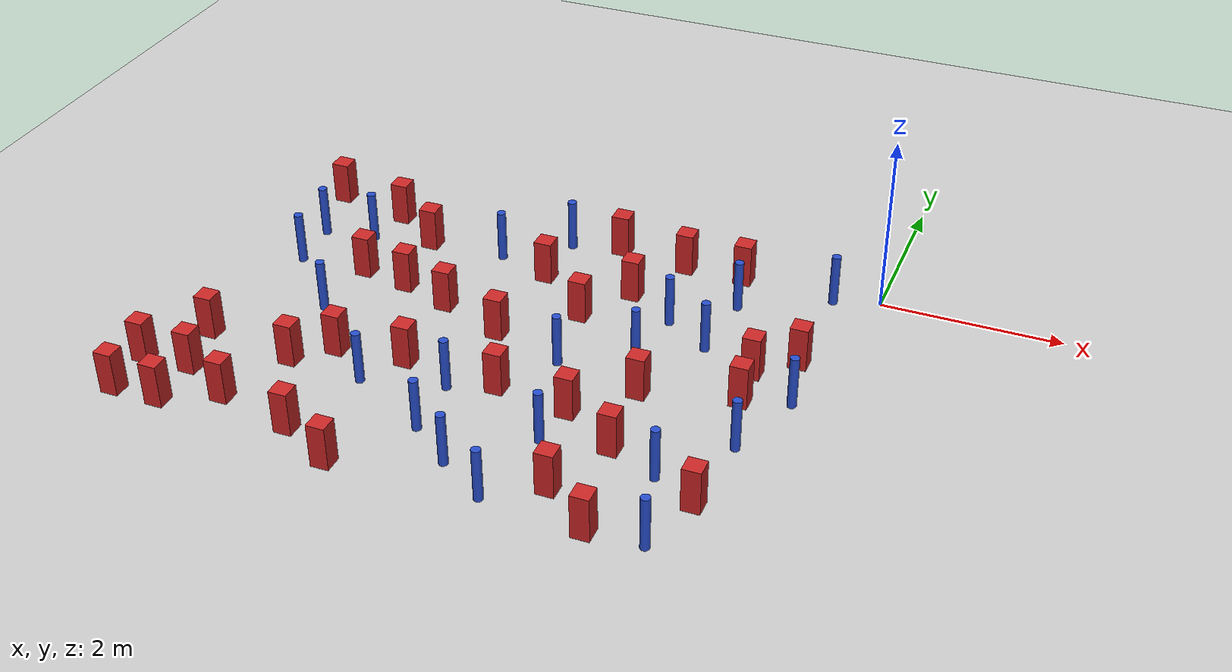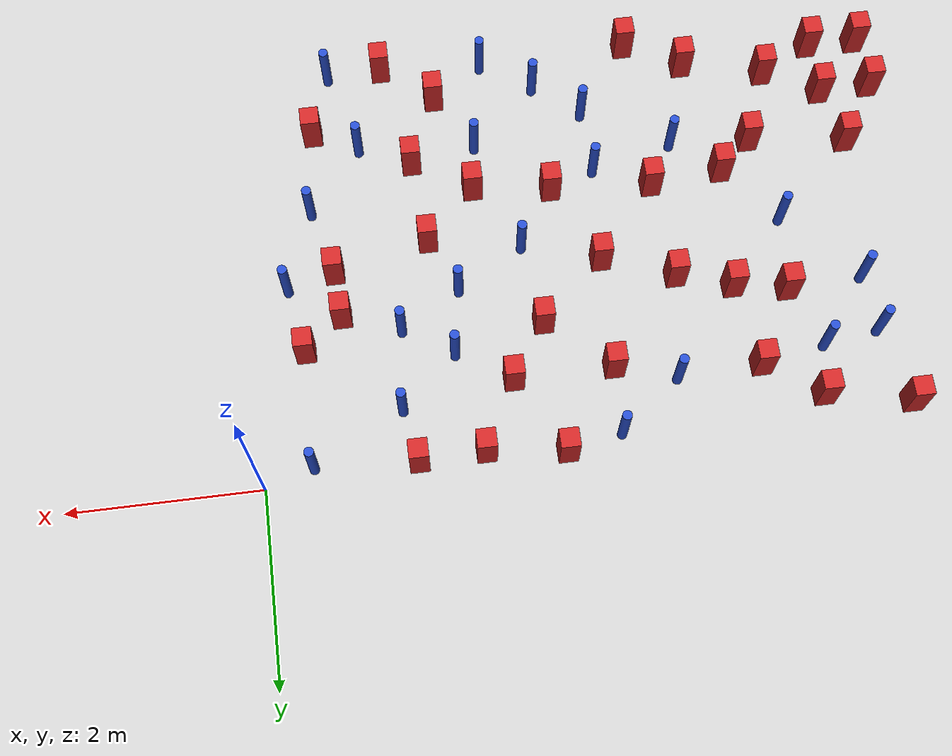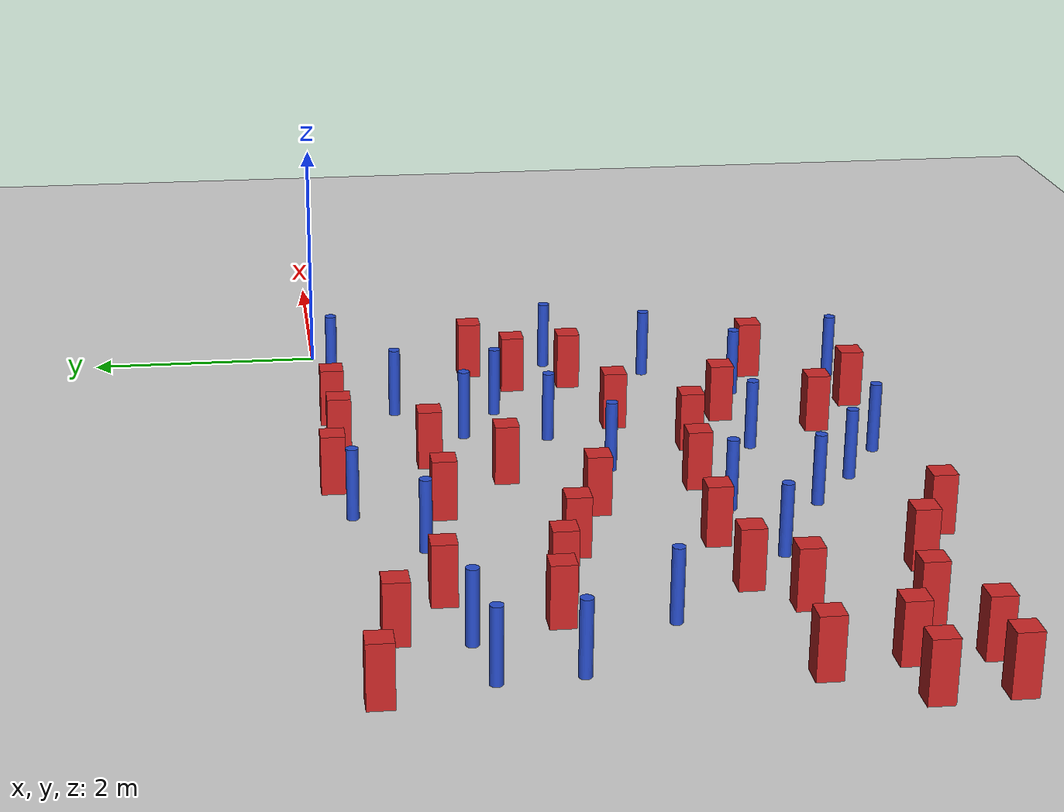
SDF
<sdf version="1.6">
 <world name="default">
  <model name="ground_plane">
   <static>1</static>
   <link name="link">
    <collision name="collision">
     <geometry><plane><normal>0 0 1</normal><size>100 100</size></plane></geometry>
     <surface><friction><ode><mu>100</mu><mu2>50</mu2></ode></friction></surface>
    </collision>
    <visual name="visual">
     <cast_shadows>0</cast_shadows>
     <geometry><plane><normal>0 0 1</normal><size>100 100</size></plane></geometry>
     <material>
      <ambient>1.0 1.0 1.0 1.0</ambient>
      <diffuse>0.8 0.8 0.8 1.0</diffuse>
      <specular>0.01 0.01 0.01 1.000000</specular>
     </material>
    </visual>
   </link>
  </model>
  <model name="square_post_obstacle0">
   <static>true</static>
   <pose>-2.44541157408 -3.07652262404 1.91545236811e-07 -7.35059704564e-06 1.12565212e-07 2.39332434364e-05</pose>
   <link name="link">
    <pose>0 0 0.25 0 -0 0</pose>
    <inertial>
     <mass>100</mass>
     <inertia>
      <ixx>0.166667</ixx>
      <ixy>0</ixy>
      <ixz>0</ixz>
      <iyy>0.166667</iyy>
      <iyz>0</iyz>
      <izz>0.166667</izz>
     </inertia>
    </inertial>
    <collision name="collision"><geometry><box><size>.2 .2 .5</size></box></geometry></collision>
    <visual name="visual">
     <geometry><box><size>.2 .2 .5</size></box></geometry>
     <material>
      <script><name>Gazebo/Red</name><uri>file://media/materials/scripts/gazebo.material</uri></script>
     </material>
    </visual>
   </link>
  </model>
  <model name="square_post_obstacle1">
   <static>true</static>
   <pose>-2.60366853146 -0.84480059614 1.91545236811e-07 -7.35059704564e-06 1.12565212e-07 2.39332434364e-05</pose>
   <link name="link">
    <pose>0 0 0.25 0 -0 0</pose>
    <inertial>
     <mass>100</mass>
     <inertia>
      <ixx>0.166667</ixx>
      <ixy>0</ixy>
      <ixz>0</ixz>
      <iyy>0.166667</iyy>
      <iyz>0</iyz>
      <izz>0.166667</izz>
     </inertia>
    </inertial>
    <collision name="collision"><geometry><box><size>.2 .2 .5</size></box></geometry></collision>
    <visual name="visual">
     <geometry><box><size>.2 .2 .5</size></box></geometry>
     <material>
      <script><name>Gazebo/Red</name><uri>file://media/materials/scripts/gazebo.material</uri></script>
     </material>
    </visual>
   </link>
  </model>
  <model name="square_post_obstacle8">
   <static>true</static>
   <pose>-1.55427434783 -0.0952835881535 1.91545236811e-07 -7.35059704564e-06 1.12565212e-07 2.39332434364e-05</pose>
   <link name="link">
    <pose>0 0 0.25 0 -0 0</pose>
    <inertial>
     <mass>100</mass>
     <inertia>
      <ixx>0.166667</ixx>
      <ixy>0</ixy>
      <ixz>0</ixz>
      <iyy>0.166667</iyy>
      <iyz>0</iyz>
      <izz>0.166667</izz>
     </inertia>
    </inertial>
    <collision name="collision"><geometry><box><size>.2 .2 .5</size></box></geometry></collision>
    <visual name="visual">
     <geometry><box><size>.2 .2 .5</size></box></geometry>
     <material>
      <script><name>Gazebo/Red</name><uri>file://media/materials/scripts/gazebo.material</uri></script>
     </material>
    </visual>
   </link>
  </model>
  <model name="pole_obstacle6">
   <static>true</static>
   <pose>-2.53006117659 -3.58657340023 7.38925637345e-09 -8.47170692798e-08 1.24976764939e-08 -1.74513093025e-07</pose>
   <link name="link">
    <pose>0 0 0.3 0 -0 0</pose>
    <inertial>
     <mass>1</mass>
     <inertia><ixx>0.145833</ixx><ixy>0</ixy><ixz>0</ixz><iyy>0.145833</iyy><iyz>0</iyz><izz>0.125</izz></inertia>
    </inertial>
    <collision name="collision">
     <geometry><cylinder><radius>0.05</radius><length>.6</length></cylinder></geometry>
    </collision>
    <visual name="visual">
     <geometry><cylinder><radius>0.05</radius><length>.6</length></cylinder></geometry>
     <material>
      <script><name>Gazebo/Blue</name><uri>file://media/materials/scripts/gazebo.material</uri></script>
     </material>
    </visual>
   </link>
  </model>
  <model name="pole_obstacle14">
   <static>true</static>
   <pose>-0.386376105266 -2.11954362649 7.38925637345e-09 -8.471706928e-08 1.24976765084e-08 -1.74513093017e-07</pose>
   <link name="link">
    <pose>0 0 0.3 0 -0 0</pose>
    <inertial>
     <mass>1</mass>
     <inertia><ixx>0.145833</ixx><ixy>0</ixy><ixz>0</ixz><iyy>0.145833</iyy><iyz>0</iyz><izz>0.125</izz></inertia>
    </inertial>
    <collision name="collision">
     <geometry><cylinder><radius>0.05</radius><length>.6</length></cylinder></geometry>
    </collision>
    <visual name="visual">
     <geometry><cylinder><radius>0.05</radius><length>.6</length></cylinder></geometry>
     <material>
      <script><name>Gazebo/Blue</name><uri>file://media/materials/scripts/gazebo.material</uri></script>
     </material>
    </visual>
   </link>
  </model>
  <model name="square_post_obstacle23">
   <static>true</static>
   <pose>-5.13417449397 -2.9715054325 1.91545236811e-07 -7.35059704564e-06 1.12565212e-07 2.39332434364e-05</pose>
   <link name="link">
    <pose>0 0 0.25 0 -0 0</pose>
    <inertial>
     <mass>100</mass>
     <inertia>
      <ixx>0.166667</ixx>
      <ixy>0</ixy>
      <ixz>0</ixz>
      <iyy>0.166667</iyy>
      <iyz>0</iyz>
      <izz>0.166667</izz>
     </inertia>
    </inertial>
    <collision name="collision"><geometry><box><size>.2 .2 .5</size></box></geometry></collision>
    <visual name="visual">
     <geometry><box><size>.2 .2 .5</size></box></geometry>
     <material>
      <script><name>Gazebo/Red</name><uri>file://media/materials/scripts/gazebo.material</uri></script>
     </material>
    </visual>
   </link>
  </model>
  <model name="pole_obstacle29">
   <static>true</static>
   <pose>-6.42064967254 -0.930193285382 7.38925637345e-09 -8.47170692799e-08 1.24976765038e-08 -1.74513093018e-07</pose>
   <link name="link">
    <pose>0 0 0.3 0 -0 0</pose>
    <inertial>
     <mass>1</mass>
     <inertia><ixx>0.145833</ixx><ixy>0</ixy><ixz>0</ixz><iyy>0.145833</iyy><iyz>0</iyz><izz>0.125</izz></inertia>
    </inertial>
    <collision name="collision">
     <geometry><cylinder><radius>0.05</radius><length>.6</length></cylinder></geometry>
    </collision>
    <visual name="visual">
     <geometry><cylinder><radius>0.05</radius><length>.6</length></cylinder></geometry>
     <material>
      <script><name>Gazebo/Blue</name><uri>file://media/materials/scripts/gazebo.material</uri></script>
     </material>
    </visual>
   </link>
  </model>
  <model name="square_post_obstacle36">
   <static>true</static>
   <pose>-6.54754585875 -3.18265136264 1.91545236811e-07 -7.35059704564e-06 1.12565212e-07 2.39332434364e-05</pose>
   <link name="link">
    <pose>0 0 0.25 0 -0 0</pose>
    <inertial>
     <mass>100</mass>
     <inertia>
      <ixx>0.166667</ixx>
      <ixy>0</ixy>
      <ixz>0</ixz>
      <iyy>0.166667</iyy>
      <iyz>0</iyz>
      <izz>0.166667</izz>
     </inertia>
    </inertial>
    <collision name="collision"><geometry><box><size>.2 .2 .5</size></box></geometry></collision>
    <visual name="visual">
     <geometry><box><size>.2 .2 .5</size></box></geometry>
     <material>
      <script><name>Gazebo/Red</name><uri>file://media/materials/scripts/gazebo.material</uri></script>
     </material>
    </visual>
   </link>
  </model>
  <model name="square_post_obstacle40">
   <static>true</static>
   <pose>-0.890050273069 -2.26057802064 1.91545236811e-07 -7.35059704564e-06 1.12565212e-07 2.39332434364e-05</pose>
   <link name="link">
    <pose>0 0 0.25 0 -0 0</pose>
    <inertial>
     <mass>100</mass>
     <inertia>
      <ixx>0.166667</ixx>
      <ixy>0</ixy>
      <ixz>0</ixz>
      <iyy>0.166667</iyy>
      <iyz>0</iyz>
      <izz>0.166667</izz>
     </inertia>
    </inertial>
    <collision name="collision"><geometry><box><size>.2 .2 .5</size></box></geometry></collision>
    <visual name="visual">
     <geometry><box><size>.2 .2 .5</size></box></geometry>
     <material>
      <script><name>Gazebo/Red</name><uri>file://media/materials/scripts/gazebo.material</uri></script>
     </material>
    </visual>
   </link>
  </model>
  <model name="square_post_obstacle43">
   <static>true</static>
   <pose>-2.23199913701 -0.116936805784 1.91545236811e-07 -7.35059704564e-06 1.12565212e-07 2.39332434364e-05</pose>
   <link name="link">
    <pose>0 0 0.25 0 -0 0</pose>
    <inertial>
     <mass>100</mass>
     <inertia>
      <ixx>0.166667</ixx>
      <ixy>0</ixy>
      <ixz>0</ixz>
      <iyy>0.166667</iyy>
      <iyz>0</iyz>
      <izz>0.166667</izz>
     </inertia>
    </inertial>
    <collision name="collision"><geometry><box><size>.2 .2 .5</size></box></geometry></collision>
    <visual name="visual">
     <geometry><box><size>.2 .2 .5</size></box></geometry>
     <material>
      <script><name>Gazebo/Red</name><uri>file://media/materials/scripts/gazebo.material</uri></script>
     </material>
    </visual>
   </link>
  </model>
  <model name="square_post_obstacle47">
   <static>true</static>
   <pose>-3.27670842811 -2.96779151539 1.91545236811e-07 -7.35059704564e-06 1.12565212e-07 2.39332434364e-05</pose>
   <link name="link">
    <pose>0 0 0.25 0 -0 0</pose>
    <inertial>
     <mass>100</mass>
     <inertia>
      <ixx>0.166667</ixx>
      <ixy>0</ixy>
      <ixz>0</ixz>
      <iyy>0.166667</iyy>
      <iyz>0</iyz>
      <izz>0.166667</izz>
     </inertia>
    </inertial>
    <collision name="collision"><geometry><box><size>.2 .2 .5</size></box></geometry></collision>
    <visual name="visual">
     <geometry><box><size>.2 .2 .5</size></box></geometry>
     <material>
      <script><name>Gazebo/Red</name><uri>file://media/materials/scripts/gazebo.material</uri></script>
     </material>
    </visual>
   </link>
  </model>
  <model name="square_post_obstacle48">
   <static>true</static>
   <pose>-4.35844400297 -2.89335764696 1.91545236811e-07 -7.35059704564e-06 1.12565212e-07 2.39332434364e-05</pose>
   <link name="link">
    <pose>0 0 0.25 0 -0 0</pose>
    <inertial>
     <mass>100</mass>
     <inertia>
      <ixx>0.166667</ixx>
      <ixy>0</ixy>
      <ixz>0</ixz>
      <iyy>0.166667</iyy>
      <iyz>0</iyz>
      <izz>0.166667</izz>
     </inertia>
    </inertial>
    <collision name="collision"><geometry><box><size>.2 .2 .5</size></box></geometry></collision>
    <visual name="visual">
     <geometry><box><size>.2 .2 .5</size></box></geometry>
     <material>
      <script><name>Gazebo/Red</name><uri>file://media/materials/scripts/gazebo.material</uri></script>
     </material>
    </visual>
   </link>
  </model>
  <model name="square_post_obstacle51">
   <static>true</static>
   <pose>-4.93885926201 -4.33652261047 1.91545236811e-07 -7.35059704564e-06 1.12565212e-07 2.39332434364e-05</pose>
   <link name="link">
    <pose>0 0 0.25 0 -0 0</pose>
    <inertial>
     <mass>100</mass>
     <inertia>
      <ixx>0.166667</ixx>
      <ixy>0</ixy>
      <ixz>0</ixz>
      <iyy>0.166667</iyy>
      <iyz>0</iyz>
      <izz>0.166667</izz>
     </inertia>
    </inertial>
    <collision name="collision"><geometry><box><size>.2 .2 .5</size></box></geometry></collision>
    <visual name="visual">
     <geometry><box><size>.2 .2 .5</size></box></geometry>
     <material>
      <script><name>Gazebo/Red</name><uri>file://media/materials/scripts/gazebo.material</uri></script>
     </material>
    </visual>
   </link>
  </model>
  <model name="pole_obstacle60">
   <static>true</static>
   <pose>-1.27445910278 -3.70349245609 7.38925637345e-09 -8.47170692799e-08 1.24976765053e-08 -1.74513093017e-07</pose>
   <link name="link">
    <pose>0 0 0.3 0 -0 0</pose>
    <inertial>
     <mass>1</mass>
     <inertia><ixx>0.145833</ixx><ixy>0</ixy><ixz>0</ixz><iyy>0.145833</iyy><iyz>0</iyz><izz>0.125</izz></inertia>
    </inertial>
    <collision name="collision">
     <geometry><cylinder><radius>0.05</radius><length>.6</length></cylinder></geometry>
    </collision>
    <visual name="visual">
     <geometry><cylinder><radius>0.05</radius><length>.6</length></cylinder></geometry>
     <material>
      <script><name>Gazebo/Blue</name><uri>file://media/materials/scripts/gazebo.material</uri></script>
     </material>
    </visual>
   </link>
  </model>
  <model name="square_post_obstacle63">
   <static>true</static>
   <pose>-6.60056362517 -0.125802145889 1.91545236811e-07 -7.35059704564e-06 1.12565212e-07 2.39332434364e-05</pose>
   <link name="link">
    <pose>0 0 0.25 0 -0 0</pose>
    <inertial>
     <mass>100</mass>
     <inertia>
      <ixx>0.166667</ixx>
      <ixy>0</ixy>
      <ixz>0</ixz>
      <iyy>0.166667</iyy>
      <iyz>0</iyz>
      <izz>0.166667</izz>
     </inertia>
    </inertial>
    <collision name="collision"><geometry><box><size>.2 .2 .5</size></box></geometry></collision>
    <visual name="visual">
     <geometry><box><size>.2 .2 .5</size></box></geometry>
     <material>
      <script><name>Gazebo/Red</name><uri>file://media/materials/scripts/gazebo.material</uri></script>
     </material>
    </visual>
   </link>
  </model>
  <model name="square_post_obstacle68">
   <static>true</static>
   <pose>-6.39846550097 -3.81714270828 1.91545236811e-07 -7.35059704564e-06 1.12565212e-07 2.39332434364e-05</pose>
   <link name="link">
    <pose>0 0 0.25 0 -0 0</pose>
    <inertial>
     <mass>100</mass>
     <inertia>
      <ixx>0.166667</ixx>
      <ixy>0</ixy>
      <ixz>0</ixz>
      <iyy>0.166667</iyy>
      <iyz>0</iyz>
      <izz>0.166667</izz>
     </inertia>
    </inertial>
    <collision name="collision"><geometry><box><size>.2 .2 .5</size></box></geometry></collision>
    <visual name="visual">
     <geometry><box><size>.2 .2 .5</size></box></geometry>
     <material>
      <script><name>Gazebo/Red</name><uri>file://media/materials/scripts/gazebo.material</uri></script>
     </material>
    </visual>
   </link>
  </model>
  <model name="square_post_obstacle73">
   <static>true</static>
   <pose>-4.32935360075 -4.66408880669 1.91545236811e-07 -7.35059704564e-06 1.12565212e-07 2.39332434364e-05</pose>
   <link name="link">
    <pose>0 0 0.25 0 -0 0</pose>
    <inertial>
     <mass>100</mass>
     <inertia>
      <ixx>0.166667</ixx>
      <ixy>0</ixy>
      <ixz>0</ixz>
      <iyy>0.166667</iyy>
      <iyz>0</iyz>
      <izz>0.166667</izz>
     </inertia>
    </inertial>
    <collision name="collision"><geometry><box><size>.2 .2 .5</size></box></geometry></collision>
    <visual name="visual">
     <geometry><box><size>.2 .2 .5</size></box></geometry>
     <material>
      <script><name>Gazebo/Red</name><uri>file://media/materials/scripts/gazebo.material</uri></script>
     </material>
    </visual>
   </link>
  </model>
  <model name="pole_obstacle74">
   <static>true</static>
   <pose>-2.71108639828 -4.59837727666 7.38925637345e-09 -8.47170692798e-08 1.24976765033e-08 -1.74513093019e-07</pose>
   <link name="link">
    <pose>0 0 0.3 0 -0 0</pose>
    <inertial>
     <mass>1</mass>
     <inertia><ixx>0.145833</ixx><ixy>0</ixy><ixz>0</ixz><iyy>0.145833</iyy><iyz>0</iyz><izz>0.125</izz></inertia>
    </inertial>
    <collision name="collision">
     <geometry><cylinder><radius>0.05</radius><length>.6</length></cylinder></geometry>
    </collision>
    <visual name="visual">
     <geometry><cylinder><radius>0.05</radius><length>.6</length></cylinder></geometry>
     <material>
      <script><name>Gazebo/Blue</name><uri>file://media/materials/scripts/gazebo.material</uri></script>
     </material>
    </visual>
   </link>
  </model>
  <model name="pole_obstacle81">
   <static>true</static>
   <pose>-2.16235681685 -1.90545091982 7.38925637345e-09 -8.471706928e-08 1.24976765152e-08 -1.74513093012e-07</pose>
   <link name="link">
    <pose>0 0 0.3 0 -0 0</pose>
    <inertial>
     <mass>1</mass>
     <inertia><ixx>0.145833</ixx><ixy>0</ixy><ixz>0</ixz><iyy>0.145833</iyy><iyz>0</iyz><izz>0.125</izz></inertia>
    </inertial>
    <collision name="collision">
     <geometry><cylinder><radius>0.05</radius><length>.6</length></cylinder></geometry>
    </collision>
    <visual name="visual">
     <geometry><cylinder><radius>0.05</radius><length>.6</length></cylinder></geometry>
     <material>
      <script><name>Gazebo/Blue</name><uri>file://media/materials/scripts/gazebo.material</uri></script>
     </material>
    </visual>
   </link>
  </model>
  <model name="pole_obstacle84">
   <static>true</static>
   <pose>-2.04403292303 -1.19593973728 7.38925637345e-09 -8.47170692799e-08 1.24976764992e-08 -1.74513093021e-07</pose>
   <link name="link">
    <pose>0 0 0.3 0 -0 0</pose>
    <inertial>
     <mass>1</mass>
     <inertia><ixx>0.145833</ixx><ixy>0</ixy><ixz>0</ixz><iyy>0.145833</iyy><iyz>0</iyz><izz>0.125</izz></inertia>
    </inertial>
    <collision name="collision">
     <geometry><cylinder><radius>0.05</radius><length>.6</length></cylinder></geometry>
    </collision>
    <visual name="visual">
     <geometry><cylinder><radius>0.05</radius><length>.6</length></cylinder></geometry>
     <material>
      <script><name>Gazebo/Blue</name><uri>file://media/materials/scripts/gazebo.material</uri></script>
     </material>
    </visual>
   </link>
  </model>
  <model name="pole_obstacle86">
   <static>true</static>
   <pose>-4.27407182849 -0.657460200058 7.38925637345e-09 -8.47170692799e-08 1.24976765038e-08 -1.74513093018e-07</pose>
   <link name="link">
    <pose>0 0 0.3 0 -0 0</pose>
    <inertial>
     <mass>1</mass>
     <inertia><ixx>0.145833</ixx><ixy>0</ixy><ixz>0</ixz><iyy>0.145833</iyy><iyz>0</iyz><izz>0.125</izz></inertia>
    </inertial>
    <collision name="collision">
     <geometry><cylinder><radius>0.05</radius><length>.6</length></cylinder></geometry>
    </collision>
    <visual name="visual">
     <geometry><cylinder><radius>0.05</radius><length>.6</length></cylinder></geometry>
     <material>
      <script><name>Gazebo/Blue</name><uri>file://media/materials/scripts/gazebo.material</uri></script>
     </material>
    </visual>
   </link>
  </model>
  <model name="pole_obstacle88">
   <static>true</static>
   <pose>-3.2527317631 -4.24765370791 7.38925637345e-09 -8.47170692798e-08 1.24976765033e-08 -1.74513093019e-07</pose>
   <link name="link">
    <pose>0 0 0.3 0 -0 0</pose>
    <inertial>
     <mass>1</mass>
     <inertia><ixx>0.145833</ixx><ixy>0</ixy><ixz>0</ixz><iyy>0.145833</iyy><iyz>0</iyz><izz>0.125</izz></inertia>
    </inertial>
    <collision name="collision">
     <geometry><cylinder><radius>0.05</radius><length>.6</length></cylinder></geometry>
    </collision>
    <visual name="visual">
     <geometry><cylinder><radius>0.05</radius><length>.6</length></cylinder></geometry>
     <material>
      <script><name>Gazebo/Blue</name><uri>file://media/materials/scripts/gazebo.material</uri></script>
     </material>
    </visual>
   </link>
  </model>
  <model name="pole_obstacle97">
   <static>true</static>
   <pose>-1.01459575418 -4.64900806116 7.38925637345e-09 -8.47170692799e-08 1.2497676505e-08 -1.74513093018e-07</pose>
   <link name="link">
    <pose>0 0 0.3 0 -0 0</pose>
    <inertial>
     <mass>1</mass>
     <inertia><ixx>0.145833</ixx><ixy>0</ixy><ixz>0</ixz><iyy>0.145833</iyy><iyz>0</iyz><izz>0.125</izz></inertia>
    </inertial>
    <collision name="collision">
     <geometry><cylinder><radius>0.05</radius><length>.6</length></cylinder></geometry>
    </collision>
    <visual name="visual">
     <geometry><cylinder><radius>0.05</radius><length>.6</length></cylinder></geometry>
     <material>
      <script><name>Gazebo/Blue</name><uri>file://media/materials/scripts/gazebo.material</uri></script>
     </material>
    </visual>
   </link>
  </model>
  <model name="pole_obstacle101">
   <static>true</static>
   <pose>-3.61887426993 -0.143311892863 7.38925637345e-09 -8.47170692796e-08 1.24976764749e-08 -1.74513093036e-07</pose>
   <link name="link">
    <pose>0 0 0.3 0 -0 0</pose>
    <inertial>
     <mass>1</mass>
     <inertia><ixx>0.145833</ixx><ixy>0</ixy><ixz>0</ixz><iyy>0.145833</iyy><iyz>0</iyz><izz>0.125</izz></inertia>
    </inertial>
    <collision name="collision">
     <geometry><cylinder><radius>0.05</radius><length>.6</length></cylinder></geometry>
    </collision>
    <visual name="visual">
     <geometry><cylinder><radius>0.05</radius><length>.6</length></cylinder></geometry>
     <material>
      <script><name>Gazebo/Blue</name><uri>file://media/materials/scripts/gazebo.material</uri></script>
     </material>
    </visual>
   </link>
  </model>
  <model name="square_post_obstacle93">
   <static>true</static>
   <pose>-2.99070358469 -1.43572314751 1.91545236811e-07 -7.35059704564e-06 1.12565212e-07 2.39332434364e-05</pose>
   <link name="link">
    <pose>0 0 0.25 0 -0 0</pose>
    <inertial>
     <mass>100</mass>
     <inertia>
      <ixx>0.166667</ixx>
      <ixy>0</ixy>
      <ixz>0</ixz>
      <iyy>0.166667</iyy>
      <iyz>0</iyz>
      <izz>0.166667</izz>
     </inertia>
    </inertial>
    <collision name="collision"><geometry><box><size>.2 .2 .5</size></box></geometry></collision>
    <visual name="visual">
     <geometry><box><size>.2 .2 .5</size></box></geometry>
     <material>
      <script><name>Gazebo/Red</name><uri>file://media/materials/scripts/gazebo.material</uri></script>
     </material>
    </visual>
   </link>
  </model>
  <model name="square_post_obstacle96">
   <static>true</static>
   <pose>-0.520205043726 -1.4054830569 1.91545236811e-07 -7.35059704564e-06 1.12565212e-07 2.39332434364e-05</pose>
   <link name="link">
    <pose>0 0 0.25 0 -0 0</pose>
    <inertial>
     <mass>100</mass>
     <inertia>
      <ixx>0.166667</ixx>
      <ixy>0</ixy>
      <ixz>0</ixz>
      <iyy>0.166667</iyy>
      <iyz>0</iyz>
      <izz>0.166667</izz>
     </inertia>
    </inertial>
    <collision name="collision"><geometry><box><size>.2 .2 .5</size></box></geometry></collision>
    <visual name="visual">
     <geometry><box><size>.2 .2 .5</size></box></geometry>
     <material>
      <script><name>Gazebo/Red</name><uri>file://media/materials/scripts/gazebo.material</uri></script>
     </material>
    </visual>
   </link>
  </model>
  <model name="pole_obstacle114">
   <static>true</static>
   <pose>-4.65158692502 -3.36251947999 7.38925637345e-09 -8.47170692798e-08 1.24976764937e-08 -1.74513093023e-07</pose>
   <link name="link">
    <pose>0 0 0.3 0 -0 0</pose>
    <inertial>
     <mass>1</mass>
     <inertia><ixx>0.145833</ixx><ixy>0</ixy><ixz>0</ixz><iyy>0.145833</iyy><iyz>0</iyz><izz>0.125</izz></inertia>
    </inertial>
    <collision name="collision">
     <geometry><cylinder><radius>0.05</radius><length>.6</length></cylinder></geometry>
    </collision>
    <visual name="visual">
     <geometry><cylinder><radius>0.05</radius><length>.6</length></cylinder></geometry>
     <material>
      <script><name>Gazebo/Blue</name><uri>file://media/materials/scripts/gazebo.material</uri></script>
     </material>
    </visual>
   </link>
  </model>
  <model name="square_post_obstacle104">
   <static>true</static>
   <pose>-3.04097120325 -0.0197305181275 1.91545236811e-07 -7.35059704564e-06 1.12565212e-07 2.39332434364e-05</pose>
   <link name="link">
    <pose>0 0 0.25 0 -0 0</pose>
    <inertial>
     <mass>100</mass>
     <inertia>
      <ixx>0.166667</ixx>
      <ixy>0</ixy>
      <ixz>0</ixz>
      <iyy>0.166667</iyy>
      <iyz>0</iyz>
      <izz>0.166667</izz>
     </inertia>
    </inertial>
    <collision name="collision"><geometry><box><size>.2 .2 .5</size></box></geometry></collision>
    <visual name="visual">
     <geometry><box><size>.2 .2 .5</size></box></geometry>
     <material>
      <script><name>Gazebo/Red</name><uri>file://media/materials/scripts/gazebo.material</uri></script>
     </material>
    </visual>
   </link>
  </model>
  <model name="pole_obstacle132">
   <static>true</static>
   <pose>-1.52534825957 -1.52220350698 7.38925637345e-09 -8.471706928e-08 1.24976765079e-08 -1.74513093017e-07</pose>
   <link name="link">
    <pose>0 0 0.3 0 -0 0</pose>
    <inertial>
     <mass>1</mass>
     <inertia><ixx>0.145833</ixx><ixy>0</ixy><ixz>0</ixz><iyy>0.145833</iyy><iyz>0</iyz><izz>0.125</izz></inertia>
    </inertial>
    <collision name="collision">
     <geometry><cylinder><radius>0.05</radius><length>.6</length></cylinder></geometry>
    </collision>
    <visual name="visual">
     <geometry><cylinder><radius>0.05</radius><length>.6</length></cylinder></geometry>
     <material>
      <script><name>Gazebo/Blue</name><uri>file://media/materials/scripts/gazebo.material</uri></script>
     </material>
    </visual>
   </link>
  </model>
  <model name="square_post_obstacle117">
   <static>true</static>
   <pose>-2.15202882933 -4.23684495872 1.91545236811e-07 -7.35059704564e-06 1.12565212e-07 2.39332434364e-05</pose>
   <link name="link">
    <pose>0 0 0.25 0 -0 0</pose>
    <inertial>
     <mass>100</mass>
     <inertia>
      <ixx>0.166667</ixx>
      <ixy>0</ixy>
      <ixz>0</ixz>
      <iyy>0.166667</iyy>
      <iyz>0</iyz>
      <izz>0.166667</izz>
     </inertia>
    </inertial>
    <collision name="collision"><geometry><box><size>.2 .2 .5</size></box></geometry></collision>
    <visual name="visual">
     <geometry><box><size>.2 .2 .5</size></box></geometry>
     <material>
      <script><name>Gazebo/Red</name><uri>file://media/materials/scripts/gazebo.material</uri></script>
     </material>
    </visual>
   </link>
  </model>
  <model name="pole_obstacle140">
   <static>true</static>
   <pose>-2.87801203504 -2.32701584748 7.38925637345e-09 -8.47170692798e-08 1.24976764939e-08 -1.74513093025e-07</pose>
   <link name="link">
    <pose>0 0 0.3 0 -0 0</pose>
    <inertial>
     <mass>1</mass>
     <inertia><ixx>0.145833</ixx><ixy>0</ixy><ixz>0</ixz><iyy>0.145833</iyy><iyz>0</iyz><izz>0.125</izz></inertia>
    </inertial>
    <collision name="collision">
     <geometry><cylinder><radius>0.05</radius><length>.6</length></cylinder></geometry>
    </collision>
    <visual name="visual">
     <geometry><cylinder><radius>0.05</radius><length>.6</length></cylinder></geometry>
     <material>
      <script><name>Gazebo/Blue</name><uri>file://media/materials/scripts/gazebo.material</uri></script>
     </material>
    </visual>
   </link>
  </model>
  <model name="square_post_obstacle132">
   <static>true</static>
   <pose>-5.57793758854 -1.50377800809 1.91545236811e-07 -7.35059704564e-06 1.12565212e-07 2.39332434364e-05</pose>
   <link name="link">
    <pose>0 0 0.25 0 -0 0</pose>
    <inertial>
     <mass>100</mass>
     <inertia>
      <ixx>0.166667</ixx>
      <ixy>0</ixy>
      <ixz>0</ixz>
      <iyy>0.166667</iyy>
      <iyz>0</iyz>
      <izz>0.166667</izz>
     </inertia>
    </inertial>
    <collision name="collision"><geometry><box><size>.2 .2 .5</size></box></geometry></collision>
    <visual name="visual">
     <geometry><box><size>.2 .2 .5</size></box></geometry>
     <material>
      <script><name>Gazebo/Red</name><uri>file://media/materials/scripts/gazebo.material</uri></script>
     </material>
    </visual>
   </link>
  </model>
  <model name="square_post_obstacle136">
   <static>true</static>
   <pose>-3.68906304403 -2.07858685245 1.91545236811e-07 -7.35059704564e-06 1.12565212e-07 2.39332434364e-05</pose>
   <link name="link">
    <pose>0 0 0.25 0 -0 0</pose>
    <inertial>
     <mass>100</mass>
     <inertia>
      <ixx>0.166667</ixx>
      <ixy>0</ixy>
      <ixz>0</ixz>
      <iyy>0.166667</iyy>
      <iyz>0</iyz>
      <izz>0.166667</izz>
     </inertia>
    </inertial>
    <collision name="collision"><geometry><box><size>.2 .2 .5</size></box></geometry></collision>
    <visual name="visual">
     <geometry><box><size>.2 .2 .5</size></box></geometry>
     <material>
      <script><name>Gazebo/Red</name><uri>file://media/materials/scripts/gazebo.material</uri></script>
     </material>
    </visual>
   </link>
  </model>
  <model name="pole_obstacle152">
   <static>true</static>
   <pose>-3.7411590605 -3.85693788281 7.38925637345e-09 -8.471706928e-08 1.24976765098e-08 -1.74513093016e-07</pose>
   <link name="link">
    <pose>0 0 0.3 0 -0 0</pose>
    <inertial>
     <mass>1</mass>
     <inertia><ixx>0.145833</ixx><ixy>0</ixy><ixz>0</ixz><iyy>0.145833</iyy><iyz>0</iyz><izz>0.125</izz></inertia>
    </inertial>
    <collision name="collision">
     <geometry><cylinder><radius>0.05</radius><length>.6</length></cylinder></geometry>
    </collision>
    <visual name="visual">
     <geometry><cylinder><radius>0.05</radius><length>.6</length></cylinder></geometry>
     <material>
      <script><name>Gazebo/Blue</name><uri>file://media/materials/scripts/gazebo.material</uri></script>
     </material>
    </visual>
   </link>
  </model>
  <model name="square_post_obstacle142">
   <static>true</static>
   <pose>-6.92374310253 -4.41951844205 1.91545236811e-07 -7.35059704564e-06 1.12565212e-07 2.39332434364e-05</pose>
   <link name="link">
    <pose>0 0 0.25 0 -0 0</pose>
    <inertial>
     <mass>100</mass>
     <inertia>
      <ixx>0.166667</ixx>
      <ixy>0</ixy>
      <ixz>0</ixz>
      <iyy>0.166667</iyy>
      <iyz>0</iyz>
      <izz>0.166667</izz>
     </inertia>
    </inertial>
    <collision name="collision"><geometry><box><size>.2 .2 .5</size></box></geometry></collision>
    <visual name="visual">
     <geometry><box><size>.2 .2 .5</size></box></geometry>
     <material>
      <script><name>Gazebo/Red</name><uri>file://media/materials/scripts/gazebo.material</uri></script>
     </material>
    </visual>
   </link>
  </model>
  <model name="square_post_obstacle152">
   <static>true</static>
   <pose>-1.90283903713 -2.51244342786 1.91545236811e-07 -7.35059704564e-06 1.12565212e-07 2.39332434364e-05</pose>
   <link name="link">
    <pose>0 0 0.25 0 -0 0</pose>
    <inertial>
     <mass>100</mass>
     <inertia>
      <ixx>0.166667</ixx>
      <ixy>0</ixy>
      <ixz>0</ixz>
      <iyy>0.166667</iyy>
      <iyz>0</iyz>
      <izz>0.166667</izz>
     </inertia>
    </inertial>
    <collision name="collision"><geometry><box><size>.2 .2 .5</size></box></geometry></collision>
    <visual name="visual">
     <geometry><box><size>.2 .2 .5</size></box></geometry>
     <material>
      <script><name>Gazebo/Red</name><uri>file://media/materials/scripts/gazebo.material</uri></script>
     </material>
    </visual>
   </link>
  </model>
  <model name="square_post_obstacle153">
   <static>true</static>
   <pose>-5.81278593027 -4.12821123684 1.91545236811e-07 -7.35059704564e-06 1.12565212e-07 2.39332434364e-05</pose>
   <link name="link">
    <pose>0 0 0.25 0 -0 0</pose>
    <inertial>
     <mass>100</mass>
     <inertia>
      <ixx>0.166667</ixx>
      <ixy>0</ixy>
      <ixz>0</ixz>
      <iyy>0.166667</iyy>
      <iyz>0</iyz>
      <izz>0.166667</izz>
     </inertia>
    </inertial>
    <collision name="collision"><geometry><box><size>.2 .2 .5</size></box></geometry></collision>
    <visual name="visual">
     <geometry><box><size>.2 .2 .5</size></box></geometry>
     <material>
      <script><name>Gazebo/Red</name><uri>file://media/materials/scripts/gazebo.material</uri></script>
     </material>
    </visual>
   </link>
  </model>
  <model name="square_post_obstacle158">
   <static>true</static>
   <pose>-6.955142999 -3.83374118585 1.91545236811e-07 -7.35059704564e-06 1.12565212e-07 2.39332434364e-05</pose>
   <link name="link">
    <pose>0 0 0.25 0 -0 0</pose>
    <inertial>
     <mass>100</mass>
     <inertia>
      <ixx>0.166667</ixx>
      <ixy>0</ixy>
      <ixz>0</ixz>
      <iyy>0.166667</iyy>
      <iyz>0</iyz>
      <izz>0.166667</izz>
     </inertia>
    </inertial>
    <collision name="collision"><geometry><box><size>.2 .2 .5</size></box></geometry></collision>
    <visual name="visual">
     <geometry><box><size>.2 .2 .5</size></box></geometry>
     <material>
      <script><name>Gazebo/Red</name><uri>file://media/materials/scripts/gazebo.material</uri></script>
     </material>
    </visual>
   </link>
  </model>
  <model name="square_post_obstacle159">
   <static>true</static>
   <pose>-3.64123343665 -0.857575690638 1.91545236811e-07 -7.35059704564e-06 1.12565212e-07 2.39332434364e-05</pose>
   <link name="link">
    <pose>0 0 0.25 0 -0 0</pose>
    <inertial>
     <mass>100</mass>
     <inertia>
      <ixx>0.166667</ixx>
      <ixy>0</ixy>
      <ixz>0</ixz>
      <iyy>0.166667</iyy>
      <iyz>0</iyz>
      <izz>0.166667</izz>
     </inertia>
    </inertial>
    <collision name="collision"><geometry><box><size>.2 .2 .5</size></box></geometry></collision>
    <visual name="visual">
     <geometry><box><size>.2 .2 .5</size></box></geometry>
     <material>
      <script><name>Gazebo/Red</name><uri>file://media/materials/scripts/gazebo.material</uri></script>
     </material>
    </visual>
   </link>
  </model>
  <model name="pole_obstacle172">
   <static>true</static>
   <pose>-6.38108816806 -1.54690667945 7.38925637345e-09 -8.471706928e-08 1.24976765134e-08 -1.74513093015e-07</pose>
   <link name="link">
    <pose>0 0 0.3 0 -0 0</pose>
    <inertial>
     <mass>1</mass>
     <inertia><ixx>0.145833</ixx><ixy>0</ixy><ixz>0</ixz><iyy>0.145833</iyy><iyz>0</iyz><izz>0.125</izz></inertia>
    </inertial>
    <collision name="collision">
     <geometry><cylinder><radius>0.05</radius><length>.6</length></cylinder></geometry>
    </collision>
    <visual name="visual">
     <geometry><cylinder><radius>0.05</radius><length>.6</length></cylinder></geometry>
     <material>
      <script><name>Gazebo/Blue</name><uri>file://media/materials/scripts/gazebo.material</uri></script>
     </material>
    </visual>
   </link>
  </model>
  <model name="pole_obstacle177">
   <static>true</static>
   <pose>-0.503978120287 -0.151181157752 7.38925637345e-09 -8.47170692798e-08 1.24976765e-08 -1.7451309302e-07</pose>
   <link name="link">
    <pose>0 0 0.3 0 -0 0</pose>
    <inertial>
     <mass>1</mass>
     <inertia><ixx>0.145833</ixx><ixy>0</ixy><ixz>0</ixz><iyy>0.145833</iyy><iyz>0</iyz><izz>0.125</izz></inertia>
    </inertial>
    <collision name="collision">
     <geometry><cylinder><radius>0.05</radius><length>.6</length></cylinder></geometry>
    </collision>
    <visual name="visual">
     <geometry><cylinder><radius>0.05</radius><length>.6</length></cylinder></geometry>
     <material>
      <script><name>Gazebo/Blue</name><uri>file://media/materials/scripts/gazebo.material</uri></script>
     </material>
    </visual>
   </link>
  </model>
  <model name="square_post_obstacle168">
   <static>true</static>
   <pose>-0.794012637239 -3.94748923321 1.91545236811e-07 -7.35059704564e-06 1.12565212e-07 2.39332434364e-05</pose>
   <link name="link">
    <pose>0 0 0.25 0 -0 0</pose>
    <inertial>
     <mass>100</mass>
     <inertia>
      <ixx>0.166667</ixx>
      <ixy>0</ixy>
      <ixz>0</ixz>
      <iyy>0.166667</iyy>
      <iyz>0</iyz>
      <izz>0.166667</izz>
     </inertia>
    </inertial>
    <collision name="collision"><geometry><box><size>.2 .2 .5</size></box></geometry></collision>
    <visual name="visual">
     <geometry><box><size>.2 .2 .5</size></box></geometry>
     <material>
      <script><name>Gazebo/Red</name><uri>file://media/materials/scripts/gazebo.material</uri></script>
     </material>
    </visual>
   </link>
  </model>
  <model name="pole_obstacle180">
   <static>true</static>
   <pose>-0.700290090294 -2.99091703632 7.38925637345e-09 -8.47170692799e-08 1.2497676509e-08 -1.74513093016e-07</pose>
   <link name="link">
    <pose>0 0 0.3 0 -0 0</pose>
    <inertial>
     <mass>1</mass>
     <inertia><ixx>0.145833</ixx><ixy>0</ixy><ixz>0</ixz><iyy>0.145833</iyy><iyz>0</iyz><izz>0.125</izz></inertia>
    </inertial>
    <collision name="collision">
     <geometry><cylinder><radius>0.05</radius><length>.6</length></cylinder></geometry>
    </collision>
    <visual name="visual">
     <geometry><cylinder><radius>0.05</radius><length>.6</length></cylinder></geometry>
     <material>
      <script><name>Gazebo/Blue</name><uri>file://media/materials/scripts/gazebo.material</uri></script>
     </material>
    </visual>
   </link>
  </model>
  <model name="square_post_obstacle170">
   <static>true</static>
   <pose>-5.7203406758 -0.305069718043 1.91545236811e-07 -7.35059704564e-06 1.12565212e-07 2.39332434364e-05</pose>
   <link name="link">
    <pose>0 0 0.25 0 -0 0</pose>
    <inertial>
     <mass>100</mass>
     <inertia>
      <ixx>0.166667</ixx>
      <ixy>0</ixy>
      <ixz>0</ixz>
      <iyy>0.166667</iyy>
      <iyz>0</iyz>
      <izz>0.166667</izz>
     </inertia>
    </inertial>
    <collision name="collision"><geometry><box><size>.2 .2 .5</size></box></geometry></collision>
    <visual name="visual">
     <geometry><box><size>.2 .2 .5</size></box></geometry>
     <material>
      <script><name>Gazebo/Red</name><uri>file://media/materials/scripts/gazebo.material</uri></script>
     </material>
    </visual>
   </link>
  </model>
  <model name="square_post_obstacle171">
   <static>true</static>
   <pose>-6.3890235614 -4.42156470351 1.91545236811e-07 -7.35059704564e-06 1.12565212e-07 2.39332434364e-05</pose>
   <link name="link">
    <pose>0 0 0.25 0 -0 0</pose>
    <inertial>
     <mass>100</mass>
     <inertia>
      <ixx>0.166667</ixx>
      <ixy>0</ixy>
      <ixz>0</ixz>
      <iyy>0.166667</iyy>
      <iyz>0</iyz>
      <izz>0.166667</izz>
     </inertia>
    </inertial>
    <collision name="collision"><geometry><box><size>.2 .2 .5</size></box></geometry></collision>
    <visual name="visual">
     <geometry><box><size>.2 .2 .5</size></box></geometry>
     <material>
      <script><name>Gazebo/Red</name><uri>file://media/materials/scripts/gazebo.material</uri></script>
     </material>
    </visual>
   </link>
  </model>
  <model name="square_post_obstacle172">
   <static>true</static>
   <pose>-4.43837915862 -1.79357803551 1.91545236811e-07 -7.35059704564e-06 1.12565212e-07 2.39332434364e-05</pose>
   <link name="link">
    <pose>0 0 0.25 0 -0 0</pose>
    <inertial>
     <mass>100</mass>
     <inertia>
      <ixx>0.166667</ixx>
      <ixy>0</ixy>
      <ixz>0</ixz>
      <iyy>0.166667</iyy>
      <iyz>0</iyz>
      <izz>0.166667</izz>
     </inertia>
    </inertial>
    <collision name="collision"><geometry><box><size>.2 .2 .5</size></box></geometry></collision>
    <visual name="visual">
     <geometry><box><size>.2 .2 .5</size></box></geometry>
     <material>
      <script><name>Gazebo/Red</name><uri>file://media/materials/scripts/gazebo.material</uri></script>
     </material>
    </visual>
   </link>
  </model>
  <model name="pole_obstacle190">
   <static>true</static>
   <pose>-1.4477222572 -0.651451769984 7.38925637345e-09 -8.47170692799e-08 1.24976765075e-08 -1.74513093017e-07</pose>
   <link name="link">
    <pose>0 0 0.3 0 -0 0</pose>
    <inertial>
     <mass>1</mass>
     <inertia><ixx>0.145833</ixx><ixy>0</ixy><ixz>0</ixz><iyy>0.145833</iyy><iyz>0</iyz><izz>0.125</izz></inertia>
    </inertial>
    <collision name="collision">
     <geometry><cylinder><radius>0.05</radius><length>.6</length></cylinder></geometry>
    </collision>
    <visual name="visual">
     <geometry><cylinder><radius>0.05</radius><length>.6</length></cylinder></geometry>
     <material>
      <script><name>Gazebo/Blue</name><uri>file://media/materials/scripts/gazebo.material</uri></script>
     </material>
    </visual>
   </link>
  </model>
  <model name="square_post_obstacle187">
   <static>true</static>
   <pose>-5.50059647519 -3.31245902064 1.91545236811e-07 -7.35059704564e-06 1.12565212e-07 2.39332434364e-05</pose>
   <link name="link">
    <pose>0 0 0.25 0 -0 0</pose>
    <inertial>
     <mass>100</mass>
     <inertia>
      <ixx>0.166667</ixx>
      <ixy>0</ixy>
      <ixz>0</ixz>
      <iyy>0.166667</iyy>
      <iyz>0</iyz>
      <izz>0.166667</izz>
     </inertia>
    </inertial>
    <collision name="collision"><geometry><box><size>.2 .2 .5</size></box></geometry></collision>
    <visual name="visual">
     <geometry><box><size>.2 .2 .5</size></box></geometry>
     <material>
      <script><name>Gazebo/Red</name><uri>file://media/materials/scripts/gazebo.material</uri></script>
     </material>
    </visual>
   </link>
  </model>
  <model name="pole_obstacle193">
   <static>true</static>
   <pose>-3.76792227217 -3.14207640336 7.38925637345e-09 -8.471706928e-08 1.24976765098e-08 -1.74513093016e-07</pose>
   <link name="link">
    <pose>0 0 0.3 0 -0 0</pose>
    <inertial>
     <mass>1</mass>
     <inertia><ixx>0.145833</ixx><ixy>0</ixy><ixz>0</ixz><iyy>0.145833</iyy><iyz>0</iyz><izz>0.125</izz></inertia>
    </inertial>
    <collision name="collision">
     <geometry><cylinder><radius>0.05</radius><length>.6</length></cylinder></geometry>
    </collision>
    <visual name="visual">
     <geometry><cylinder><radius>0.05</radius><length>.6</length></cylinder></geometry>
     <material>
      <script><name>Gazebo/Blue</name><uri>file://media/materials/scripts/gazebo.material</uri></script>
     </material>
    </visual>
   </link>
  </model>
  <model name="pole_obstacle198">
   <static>true</static>
   <pose>-5.83731036112 -0.834910964803 7.38925637345e-09 -8.47170692799e-08 1.24976765038e-08 -1.74513093018e-07</pose>
   <link name="link">
    <pose>0 0 0.3 0 -0 0</pose>
    <inertial>
     <mass>1</mass>
     <inertia><ixx>0.145833</ixx><ixy>0</ixy><ixz>0</ixz><iyy>0.145833</iyy><iyz>0</iyz><izz>0.125</izz></inertia>
    </inertial>
    <collision name="collision">
     <geometry><cylinder><radius>0.05</radius><length>.6</length></cylinder></geometry>
    </collision>
    <visual name="visual">
     <geometry><cylinder><radius>0.05</radius><length>.6</length></cylinder></geometry>
     <material>
      <script><name>Gazebo/Blue</name><uri>file://media/materials/scripts/gazebo.material</uri></script>
     </material>
    </visual>
   </link>
  </model>
  <model name="square_post_obstacle192">
   <static>true</static>
   <pose>-0.923230992846 -1.75024957361 1.91545236811e-07 -7.35059704564e-06 1.12565212e-07 2.39332434364e-05</pose>
   <link name="link">
    <pose>0 0 0.25 0 -0 0</pose>
    <inertial>
     <mass>100</mass>
     <inertia>
      <ixx>0.166667</ixx>
      <ixy>0</ixy>
      <ixz>0</ixz>
      <iyy>0.166667</iyy>
      <iyz>0</iyz>
      <izz>0.166667</izz>
     </inertia>
    </inertial>
    <collision name="collision"><geometry><box><size>.2 .2 .5</size></box></geometry></collision>
    <visual name="visual">
     <geometry><box><size>.2 .2 .5</size></box></geometry>
     <material>
      <script><name>Gazebo/Red</name><uri>file://media/materials/scripts/gazebo.material</uri></script>
     </material>
    </visual>
   </link>
  </model>
  <model name="square_post_obstacle194">
   <static>true</static>
   <pose>-5.14930599144 -0.701109109768 1.91545236811e-07 -7.35059704564e-06 1.12565212e-07 2.39332434364e-05</pose>
   <link name="link">
    <pose>0 0 0.25 0 -0 0</pose>
    <inertial>
     <mass>100</mass>
     <inertia>
      <ixx>0.166667</ixx>
      <ixy>0</ixy>
      <ixz>0</ixz>
      <iyy>0.166667</iyy>
      <iyz>0</iyz>
      <izz>0.166667</izz>
     </inertia>
    </inertial>
    <collision name="collision"><geometry><box><size>.2 .2 .5</size></box></geometry></collision>
    <visual name="visual">
     <geometry><box><size>.2 .2 .5</size></box></geometry>
     <material>
      <script><name>Gazebo/Red</name><uri>file://media/materials/scripts/gazebo.material</uri></script>
     </material>
    </visual>
   </link>
  </model>
  <model name="square_post_obstacle197">
   <static>true</static>
   <pose>-1.60582323941 -4.67720731533 1.91545236811e-07 -7.35059704564e-06 1.12565212e-07 2.39332434364e-05</pose>
   <link name="link">
    <pose>0 0 0.25 0 -0 0</pose>
    <inertial>
     <mass>100</mass>
     <inertia>
      <ixx>0.166667</ixx>
      <ixy>0</ixy>
      <ixz>0</ixz>
      <iyy>0.166667</iyy>
      <iyz>0</iyz>
      <izz>0.166667</izz>
     </inertia>
    </inertial>
    <collision name="collision"><geometry><box><size>.2 .2 .5</size></box></geometry></collision>
    <visual name="visual">
     <geometry><box><size>.2 .2 .5</size></box></geometry>
     <material>
      <script><name>Gazebo/Red</name><uri>file://media/materials/scripts/gazebo.material</uri></script>
     </material>
    </visual>
   </link>
  </model>
  <model name="square_post_obstacle203">
   <static>true</static>
   <pose>-5.0175177308 -1.60438116763 1.91545236811e-07 -7.35059704564e-06 1.12565212e-07 2.39332434364e-05</pose>
   <link name="link">
    <pose>0 0 0.25 0 -0 0</pose>
    <inertial>
     <mass>100</mass>
     <inertia>
      <ixx>0.166667</ixx>
      <ixy>0</ixy>
      <ixz>0</ixz>
      <iyy>0.166667</iyy>
      <iyz>0</iyz>
      <izz>0.166667</izz>
     </inertia>
    </inertial>
    <collision name="collision"><geometry><box><size>.2 .2 .5</size></box></geometry></collision>
    <visual name="visual">
     <geometry><box><size>.2 .2 .5</size></box></geometry>
     <material>
      <script><name>Gazebo/Red</name><uri>file://media/materials/scripts/gazebo.material</uri></script>
     </material>
    </visual>
   </link>
  </model>
  <model name="square_post_obstacle219">
   <static>true</static>
   <pose>-1.82705504499 -3.46336403778 1.91545236811e-07 -7.35059704564e-06 1.12565212e-07 2.39332434364e-05</pose>
   <link name="link">
    <pose>0 0 0.25 0 -0 0</pose>
    <inertial>
     <mass>100</mass>
     <inertia>
      <ixx>0.166667</ixx>
      <ixy>0</ixy>
      <ixz>0</ixz>
      <iyy>0.166667</iyy>
      <iyz>0</iyz>
      <izz>0.166667</izz>
     </inertia>
    </inertial>
    <collision name="collision"><geometry><box><size>.2 .2 .5</size></box></geometry></collision>
    <visual name="visual">
     <geometry><box><size>.2 .2 .5</size></box></geometry>
     <material>
      <script><name>Gazebo/Red</name><uri>file://media/materials/scripts/gazebo.material</uri></script>
     </material>
    </visual>
   </link>
  </model>
  <model name="pole_obstacle221">
   <static>true</static>
   <pose>-5.66157999043 -2.32234997922 7.38925637345e-09 -8.47170692798e-08 1.24976764937e-08 -1.74513093023e-07</pose>
   <link name="link">
    <pose>0 0 0.3 0 -0 0</pose>
    <inertial>
     <mass>1</mass>
     <inertia><ixx>0.145833</ixx><ixy>0</ixy><ixz>0</ixz><iyy>0.145833</iyy><iyz>0</iyz><izz>0.125</izz></inertia>
    </inertial>
    <collision name="collision">
     <geometry><cylinder><radius>0.05</radius><length>.6</length></cylinder></geometry>
    </collision>
    <visual name="visual">
     <geometry><cylinder><radius>0.05</radius><length>.6</length></cylinder></geometry>
     <material>
      <script><name>Gazebo/Blue</name><uri>file://media/materials/scripts/gazebo.material</uri></script>
     </material>
    </visual>
   </link>
  </model>
 </world>
</sdf>
